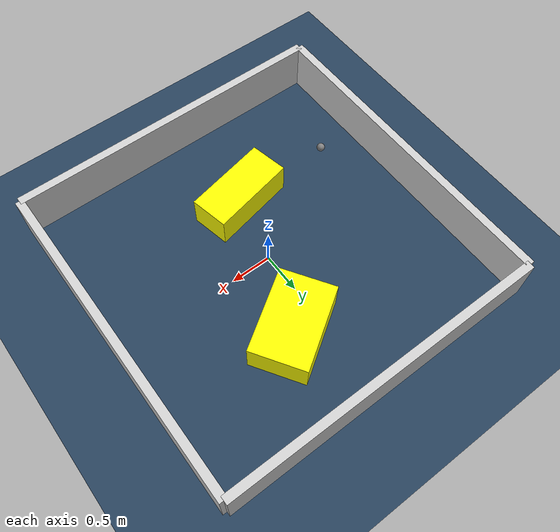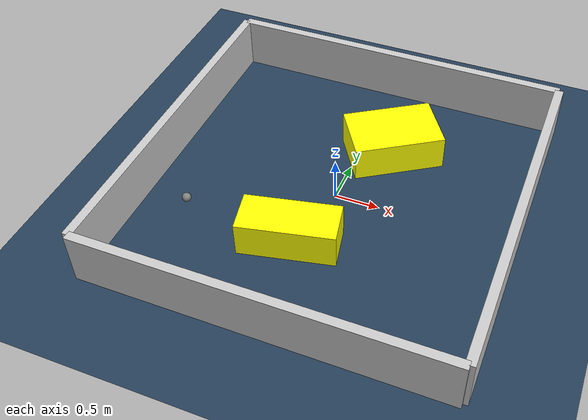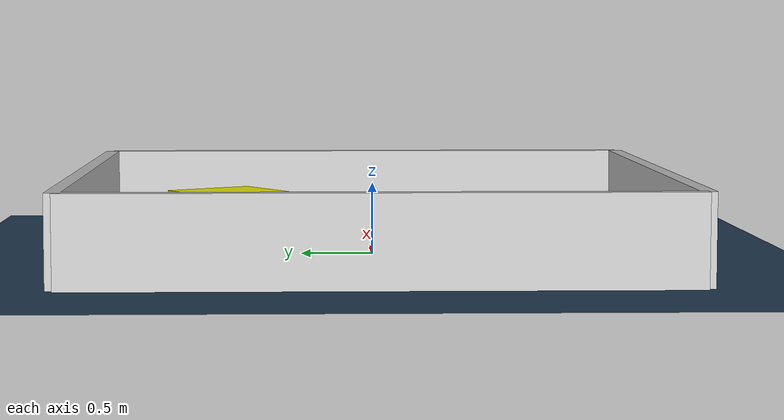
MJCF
<?xml version="1.0" ?>
<mujoco model="generated_environment">
  <option timestep="0.01" integrator="RK4" cone="elliptic"/>
  <default>
    <geom density="1"/>
  </default>
  <asset>
    <texture builtin="gradient" height="3072" rgb1="0.3 0.5 0.7" rgb2="0 0 0" type="skybox" width="512"/>
    <texture builtin="checker" height="300" mark="edge" markrgb="0.8 0.8 0.8" name="groundplane" rgb1="0.2 0.3 0.4" rgb2="0.1 0.2 0.3" type="2d" width="300"/>
    <material name="groundplane" reflectance="0.2" texrepeat="5 5" texture="groundplane" texuniform="true"/>
    <material name="robot" rgba="0.0 1.0 0.0 1"/>
  </asset>
  <worldbody>
    <light dir="0 0 -1" directional="true" pos="0 0 1.5"/>
    <geom condim="4" friction="1.0 0.005 0.001" material="groundplane" name="floor" size="0 0 0.05" type="plane"/>
    <body name="walls">
      <geom name="wall_1" condim="4" pos="-2.0 0.0 0.3" rgba="0.800000011920929 0.800000011920929 0.800000011920929 1.0" size="0.05 2.0 0.3" type="box"/>
      <geom name="wall_2" condim="4" pos="2.0 0.0 0.3" rgba="0.800000011920929 0.800000011920929 0.800000011920929 1.0" size="0.05 2.0 0.3" type="box"/>
      <geom name="wall_3" condim="4" pos="0.0 -2.0 0.3" rgba="0.800000011920929 0.800000011920929 0.800000011920929 1.0" size="2.0 0.05 0.3" type="box"/>
      <geom name="wall_4" condim="4" pos="0.0 2.0 0.3" rgba="0.800000011920929 0.800000011920929 0.800000011920929 1.0" size="2.0 0.05 0.3" type="box"/>
    </body>
    <body name="robot">
      <joint name="joint_x" type="slide" pos="0 0 0" axis="1 0 0"/>
      <joint name="joint_y" type="slide" pos="0 0 0" axis="0 1 0"/>
      <geom name="robot" type="sphere" pos="-1.4094021721909757 -0.7881761621329421 0.2" size="0.05" mass="5." friction="1.0 0.005 0.0001" condim="4"/>
      <site name="sensor_ball"/>
    </body>
    <body name="obstacle_1_movable">
      <geom name="obstacle_1_movable" condim="4" pos="0.3498978446478844 0.9086226064241729 0.2" euler="0 0 33.19445809231108" friction="1.0 0.005 0.001" rgba="1 1 0 1" size="0.5138505684671855 0.3378252574096945 0.2" type="box" mass="0.1"/>
      <joint type="free"/>
    </body>
    <body name="obstacle_2_movable">
      <geom name="obstacle_2_movable" condim="4" pos="-0.18849644401467547 -0.8167218196479011 0.2" euler="0 0 191.9878926183279" friction="1.0 0.005 0.001" rgba="1 1 0 1" size="0.5272904845792126 0.23562738798923444 0.2" type="box" mass="0.1"/>
      <joint type="free"/>
    </body>
  </worldbody>
  <actuator>
    <motor name="actuator_x" joint="joint_x" gear="1" ctrlrange="-1 1"/>
    <motor name="actuator_y" joint="joint_y" gear="1" ctrlrange="-1 1"/>
  </actuator>
</mujoco>
